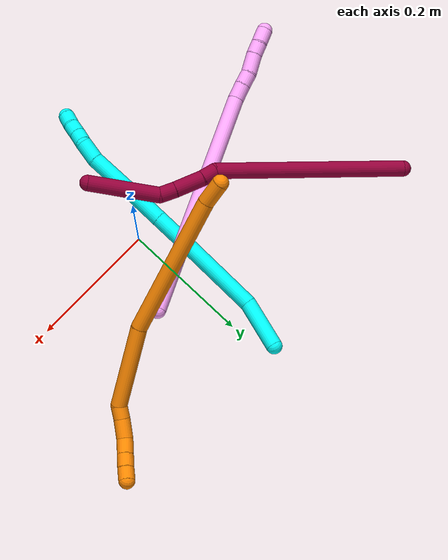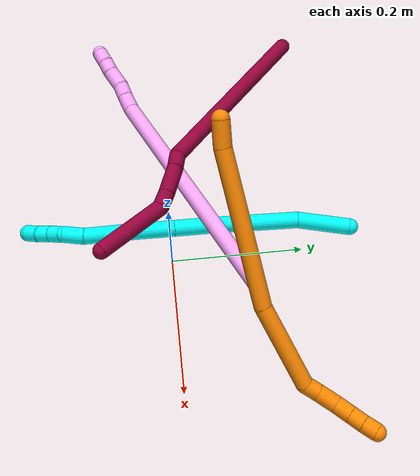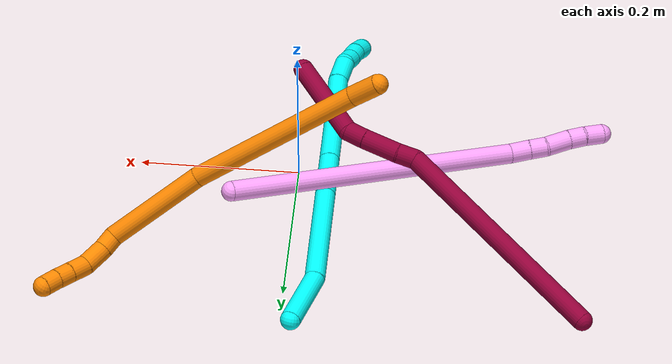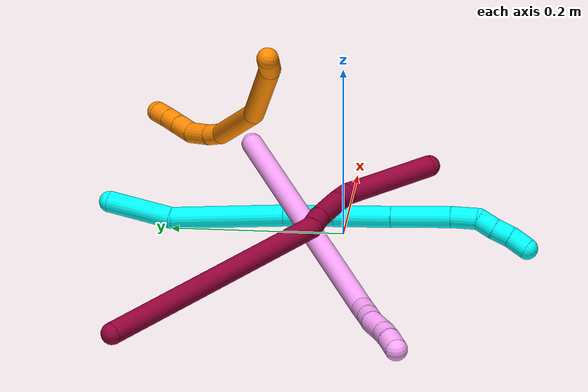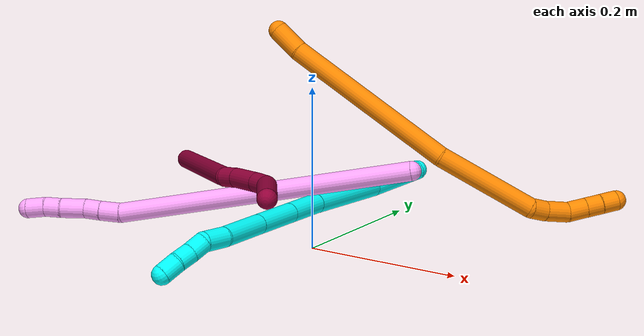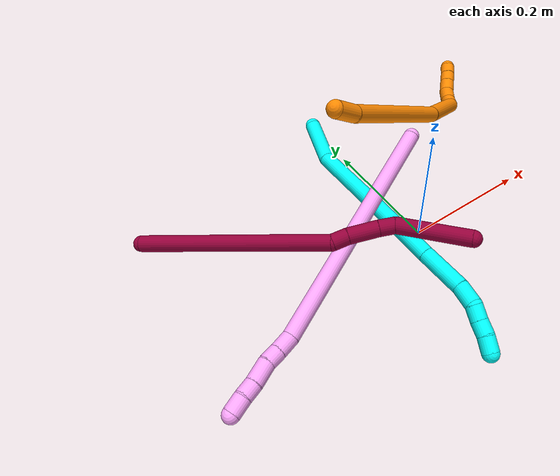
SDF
<sdf version="1.7">
 <world name="default">
  <model name="3">
   <static>0</static>
   <link name="3">
    <collision name="collision-cylinder-e_1_1_4">
     <pose>-0.000351 -0.034444 0.018563 1.0765 -0.008983 -0.005363</pose>
     <geometry><cylinder><radius>0.0125</radius><length>0.078259</length></cylinder></geometry>
     <surface>
      <friction><ode><mu>1.16</mu><mu2>1.16</mu2><slip1>0</slip1><slip2>0</slip2></ode></friction>
      <contact><ode><kp>1e+06</kp><kd>1</kd><max_vel>0</max_vel><min_depth>0.001</min_depth></ode></contact>
     </surface>
    </collision>
    <visual name="visual-cylinder-e_1_1_4">
     <pose>-0.000351 -0.034444 0.018563 1.0765 -0.008983 -0.005363</pose>
     <geometry><cylinder><radius>0.0125</radius><length>0.078259</length></cylinder></geometry>
     <material><ambient>0.003922 1 0.996078 1</ambient></material>
    </visual>
    <collision name="collision-cylinder-e_2_4_5">
     <pose>0.016247 -0.117613 0.077042 0.884425 0.26288 0.125029</pose>
     <geometry><cylinder><radius>0.0125</radius><length>0.130456</length></cylinder></geometry>
     <surface>
      <friction><ode><mu>1.16</mu><mu2>1.16</mu2><slip1>0</slip1><slip2>0</slip2></ode></friction>
      <contact><ode><kp>1e+06</kp><kd>1</kd><max_vel>0</max_vel><min_depth>0.001</min_depth></ode></contact>
     </surface>
    </collision>
    <visual name="visual-cylinder-e_2_4_5">
     <pose>0.016247 -0.117613 0.077042 0.884425 0.26288 0.125029</pose>
     <geometry><cylinder><radius>0.0125</radius><length>0.130456</length></cylinder></geometry>
     <material><ambient>0.003922 1 0.996078 1</ambient></material>
    </visual>
    <collision name="collision-cylinder-e_3_5_6">
     <pose>0.040949 -0.188507 0.133796 0.921304 0.271547 0.135385</pose>
     <geometry><cylinder><radius>0.0125</radius><length>0.057796</length></cylinder></geometry>
     <surface>
      <friction><ode><mu>1.16</mu><mu2>1.16</mu2><slip1>0</slip1><slip2>0</slip2></ode></friction>
      <contact><ode><kp>1e+06</kp><kd>1</kd><max_vel>0</max_vel><min_depth>0.001</min_depth></ode></contact>
     </surface>
    </collision>
    <visual name="visual-cylinder-e_3_5_6">
     <pose>0.040949 -0.188507 0.133796 0.921304 0.271547 0.135385</pose>
     <geometry><cylinder><radius>0.0125</radius><length>0.057796</length></cylinder></geometry>
     <material><ambient>0.003922 1 0.996078 1</ambient></material>
    </visual>
    <collision name="collision-cylinder-e_4_6_7">
     <pose>0.057413 -0.235989 0.169707 0.924993 0.268297 0.134368</pose>
     <geometry><cylinder><radius>0.0125</radius><length>0.06574</length></cylinder></geometry>
     <surface>
      <friction><ode><mu>1.16</mu><mu2>1.16</mu2><slip1>0</slip1><slip2>0</slip2></ode></friction>
      <contact><ode><kp>1e+06</kp><kd>1</kd><max_vel>0</max_vel><min_depth>0.001</min_depth></ode></contact>
     </surface>
    </collision>
    <visual name="visual-cylinder-e_4_6_7">
     <pose>0.057413 -0.235989 0.169707 0.924993 0.268297 0.134368</pose>
     <geometry><cylinder><radius>0.0125</radius><length>0.06574</length></cylinder></geometry>
     <material><ambient>0.003922 1 0.996078 1</ambient></material>
    </visual>
    <collision name="collision-cylinder-e_5_7_8">
     <pose>0.075996 -0.287848 0.209049 0.918751 0.287319 0.142871</pose>
     <geometry><cylinder><radius>0.0125</radius><length>0.069654</length></cylinder></geometry>
     <surface>
      <friction><ode><mu>1.16</mu><mu2>1.16</mu2><slip1>0</slip1><slip2>0</slip2></ode></friction>
      <contact><ode><kp>1e+06</kp><kd>1</kd><max_vel>0</max_vel><min_depth>0.001</min_depth></ode></contact>
     </surface>
    </collision>
    <visual name="visual-cylinder-e_5_7_8">
     <pose>0.075996 -0.287848 0.209049 0.918751 0.287319 0.142871</pose>
     <geometry><cylinder><radius>0.0125</radius><length>0.069654</length></cylinder></geometry>
     <material><ambient>0.003922 1 0.996078 1</ambient></material>
    </visual>
    <collision name="collision-cylinder-e_6_8_9">
     <pose>0.087256 -0.327242 0.239061 0.921843 0.086026 0.04274</pose>
     <geometry><cylinder><radius>0.0125</radius><length>0.032368</length></cylinder></geometry>
     <surface>
      <friction><ode><mu>1.16</mu><mu2>1.16</mu2><slip1>0</slip1><slip2>0</slip2></ode></friction>
      <contact><ode><kp>1e+06</kp><kd>1</kd><max_vel>0</max_vel><min_depth>0.001</min_depth></ode></contact>
     </surface>
    </collision>
    <visual name="visual-cylinder-e_6_8_9">
     <pose>0.087256 -0.327242 0.239061 0.921843 0.086026 0.04274</pose>
     <geometry><cylinder><radius>0.0125</radius><length>0.032368</length></cylinder></geometry>
     <material><ambient>0.003922 1 0.996078 1</ambient></material>
    </visual>
    <collision name="collision-cylinder-e_7_9_10">
     <pose>0.088554 -0.350749 0.250482 1.41484 -0.008558 -0.007318</pose>
     <geometry><cylinder><radius>0.0125</radius><length>0.021584</length></cylinder></geometry>
     <surface>
      <friction><ode><mu>1.16</mu><mu2>1.16</mu2><slip1>0</slip1><slip2>0</slip2></ode></friction>
      <contact><ode><kp>1e+06</kp><kd>1</kd><max_vel>0</max_vel><min_depth>0.001</min_depth></ode></contact>
     </surface>
    </collision>
    <visual name="visual-cylinder-e_7_9_10">
     <pose>0.088554 -0.350749 0.250482 1.41484 -0.008558 -0.007318</pose>
     <geometry><cylinder><radius>0.0125</radius><length>0.021584</length></cylinder></geometry>
     <material><ambient>0.003922 1 0.996078 1</ambient></material>
    </visual>
    <collision name="collision-cylinder-e_8_10_11">
     <pose>0.088896 -0.371485 0.254842 1.31049 0.041644 0.032006</pose>
     <geometry><cylinder><radius>0.0125</radius><length>0.020872</length></cylinder></geometry>
     <surface>
      <friction><ode><mu>1.16</mu><mu2>1.16</mu2><slip1>0</slip1><slip2>0</slip2></ode></friction>
      <contact><ode><kp>1e+06</kp><kd>1</kd><max_vel>0</max_vel><min_depth>0.001</min_depth></ode></contact>
     </surface>
    </collision>
    <visual name="visual-cylinder-e_8_10_11">
     <pose>0.088896 -0.371485 0.254842 1.31049 0.041644 0.032006</pose>
     <geometry><cylinder><radius>0.0125</radius><length>0.020872</length></cylinder></geometry>
     <material><ambient>0.003922 1 0.996078 1</ambient></material>
    </visual>
    <collision name="collision-cylinder-e_9_11_2">
     <pose>0.088657 -0.393095 0.258895 1.45261 -0.057933 -0.051464</pose>
     <geometry><cylinder><radius>0.0125</radius><length>0.023271</length></cylinder></geometry>
     <surface>
      <friction><ode><mu>1.16</mu><mu2>1.16</mu2><slip1>0</slip1><slip2>0</slip2></ode></friction>
      <contact><ode><kp>1e+06</kp><kd>1</kd><max_vel>0</max_vel><min_depth>0.001</min_depth></ode></contact>
     </surface>
    </collision>
    <visual name="visual-cylinder-e_9_11_2">
     <pose>0.088657 -0.393095 0.258895 1.45261 -0.057933 -0.051464</pose>
     <geometry><cylinder><radius>0.0125</radius><length>0.023271</length></cylinder></geometry>
     <material><ambient>0.003922 1 0.996078 1</ambient></material>
    </visual>
    <collision name="collision-sphere-2">
     <pose>0.087983 -0.404631 0.260265 0 -0 0</pose>
     <geometry><sphere><radius>0.0125</radius></sphere></geometry>
     <surface>
      <friction><ode><mu>1.16</mu><mu2>1.16</mu2><slip1>0</slip1><slip2>0</slip2></ode></friction>
      <contact><ode><kp>1e+06</kp><kd>1</kd><max_vel>0</max_vel><min_depth>0.001</min_depth></ode></contact>
     </surface>
    </collision>
    <visual name="visual-sphere-2">
     <pose>0.087983 -0.404631 0.260265 0 -0 0</pose>
     <geometry><sphere><radius>0.0125</radius></sphere></geometry>
     <material><ambient>0.003922 1 0.996078 1</ambient></material>
    </visual>
    <collision name="collision-sphere-11">
     <pose>0.089331 -0.38156 0.257526 0 -0 0</pose>
     <geometry><sphere><radius>0.0125</radius></sphere></geometry>
     <surface>
      <friction><ode><mu>1.16</mu><mu2>1.16</mu2><slip1>0</slip1><slip2>0</slip2></ode></friction>
      <contact><ode><kp>1e+06</kp><kd>1</kd><max_vel>0</max_vel><min_depth>0.001</min_depth></ode></contact>
     </surface>
    </collision>
    <visual name="visual-sphere-11">
     <pose>0.089331 -0.38156 0.257526 0 -0 0</pose>
     <geometry><sphere><radius>0.0125</radius></sphere></geometry>
     <material><ambient>0.003922 1 0.996078 1</ambient></material>
    </visual>
    <collision name="collision-sphere-10">
     <pose>0.088462 -0.361409 0.252158 0 -0 0</pose>
     <geometry><sphere><radius>0.0125</radius></sphere></geometry>
     <surface>
      <friction><ode><mu>1.16</mu><mu2>1.16</mu2><slip1>0</slip1><slip2>0</slip2></ode></friction>
      <contact><ode><kp>1e+06</kp><kd>1</kd><max_vel>0</max_vel><min_depth>0.001</min_depth></ode></contact>
     </surface>
    </collision>
    <visual name="visual-sphere-10">
     <pose>0.088462 -0.361409 0.252158 0 -0 0</pose>
     <geometry><sphere><radius>0.0125</radius></sphere></geometry>
     <material><ambient>0.003922 1 0.996078 1</ambient></material>
    </visual>
    <collision name="collision-sphere-9">
     <pose>0.088647 -0.340088 0.248806 0 -0 0</pose>
     <geometry><sphere><radius>0.0125</radius></sphere></geometry>
     <surface>
      <friction><ode><mu>1.16</mu><mu2>1.16</mu2><slip1>0</slip1><slip2>0</slip2></ode></friction>
      <contact><ode><kp>1e+06</kp><kd>1</kd><max_vel>0</max_vel><min_depth>0.001</min_depth></ode></contact>
     </surface>
    </collision>
    <visual name="visual-sphere-9">
     <pose>0.088647 -0.340088 0.248806 0 -0 0</pose>
     <geometry><sphere><radius>0.0125</radius></sphere></geometry>
     <material><ambient>0.003922 1 0.996078 1</ambient></material>
    </visual>
    <collision name="collision-sphere-4">
     <pose>-0.000703 -0.068889 0.037125 0 -0 0</pose>
     <geometry><sphere><radius>0.0125</radius></sphere></geometry>
     <surface>
      <friction><ode><mu>1.16</mu><mu2>1.16</mu2><slip1>0</slip1><slip2>0</slip2></ode></friction>
      <contact><ode><kp>1e+06</kp><kd>1</kd><max_vel>0</max_vel><min_depth>0.001</min_depth></ode></contact>
     </surface>
    </collision>
    <visual name="visual-sphere-4">
     <pose>-0.000703 -0.068889 0.037125 0 -0 0</pose>
     <geometry><sphere><radius>0.0125</radius></sphere></geometry>
     <material><ambient>0.003922 1 0.996078 1</ambient></material>
    </visual>
    <collision name="collision-sphere-1">
     <geometry><sphere><radius>0.0125</radius></sphere></geometry>
     <surface>
      <friction><ode><mu>1.16</mu><mu2>1.16</mu2><slip1>0</slip1><slip2>0</slip2></ode></friction>
      <contact><ode><kp>1e+06</kp><kd>1</kd><max_vel>0</max_vel><min_depth>0.001</min_depth></ode></contact>
     </surface>
    </collision>
    <visual name="visual-sphere-1">
     <geometry><sphere><radius>0.0125</radius></sphere></geometry>
     <material><ambient>0.003922 1 0.996078 1</ambient></material>
    </visual>
    <collision name="collision-sphere-8">
     <pose>0.085866 -0.314396 0.229317 0 -0 0</pose>
     <geometry><sphere><radius>0.0125</radius></sphere></geometry>
     <surface>
      <friction><ode><mu>1.16</mu><mu2>1.16</mu2><slip1>0</slip1><slip2>0</slip2></ode></friction>
      <contact><ode><kp>1e+06</kp><kd>1</kd><max_vel>0</max_vel><min_depth>0.001</min_depth></ode></contact>
     </surface>
    </collision>
    <visual name="visual-sphere-8">
     <pose>0.085866 -0.314396 0.229317 0 -0 0</pose>
     <geometry><sphere><radius>0.0125</radius></sphere></geometry>
     <material><ambient>0.003922 1 0.996078 1</ambient></material>
    </visual>
    <collision name="collision-sphere-5">
     <pose>0.033198 -0.166336 0.11696 0 -0 0</pose>
     <geometry><sphere><radius>0.0125</radius></sphere></geometry>
     <surface>
      <friction><ode><mu>1.16</mu><mu2>1.16</mu2><slip1>0</slip1><slip2>0</slip2></ode></friction>
      <contact><ode><kp>1e+06</kp><kd>1</kd><max_vel>0</max_vel><min_depth>0.001</min_depth></ode></contact>
     </surface>
    </collision>
    <visual name="visual-sphere-5">
     <pose>0.033198 -0.166336 0.11696 0 -0 0</pose>
     <geometry><sphere><radius>0.0125</radius></sphere></geometry>
     <material><ambient>0.003922 1 0.996078 1</ambient></material>
    </visual>
    <collision name="collision-sphere-6">
     <pose>0.0487 -0.210678 0.150633 0 -0 0</pose>
     <geometry><sphere><radius>0.0125</radius></sphere></geometry>
     <surface>
      <friction><ode><mu>1.16</mu><mu2>1.16</mu2><slip1>0</slip1><slip2>0</slip2></ode></friction>
      <contact><ode><kp>1e+06</kp><kd>1</kd><max_vel>0</max_vel><min_depth>0.001</min_depth></ode></contact>
     </surface>
    </collision>
    <visual name="visual-sphere-6">
     <pose>0.0487 -0.210678 0.150633 0 -0 0</pose>
     <geometry><sphere><radius>0.0125</radius></sphere></geometry>
     <material><ambient>0.003922 1 0.996078 1</ambient></material>
    </visual>
    <collision name="collision-sphere-7">
     <pose>0.066127 -0.261301 0.188782 0 -0 0</pose>
     <geometry><sphere><radius>0.0125</radius></sphere></geometry>
     <surface>
      <friction><ode><mu>1.16</mu><mu2>1.16</mu2><slip1>0</slip1><slip2>0</slip2></ode></friction>
      <contact><ode><kp>1e+06</kp><kd>1</kd><max_vel>0</max_vel><min_depth>0.001</min_depth></ode></contact>
     </surface>
    </collision>
    <visual name="visual-sphere-7">
     <pose>0.066127 -0.261301 0.188782 0 -0 0</pose>
     <geometry><sphere><radius>0.0125</radius></sphere></geometry>
     <material><ambient>0.003922 1 0.996078 1</ambient></material>
    </visual>
    <inertial>
     <pose>0.044362 -0.199123 0.138884 0 -0 0</pose>
     <mass>0.5</mass>
     <inertia>
      <ixx>0.000346</ixx>
      <ixy>0</ixy>
      <ixz>0</ixz>
      <iyy>0.000197</iyy>
      <iyz>0</iyz>
      <izz>0.000196</izz>
     </inertia>
    </inertial>
   </link>
   <pose>-0.016737 0.270159 0.036966 0.616482 0.031678 -0.271851</pose>
  </model>
  <model name="4">
   <static>0</static>
   <link name="4">
    <collision name="collision-cylinder-e_1_1_4">
     <pose>-0.155553 -0.105173 -0.004821 1.6166 -0.975791 -1.01422</pose>
     <geometry><cylinder><radius>0.0125</radius><length>0.375667</length></cylinder></geometry>
     <surface>
      <friction><ode><mu>1.16</mu><mu2>1.16</mu2><slip1>0</slip1><slip2>0</slip2></ode></friction>
      <contact><ode><kp>1e+06</kp><kd>1</kd><max_vel>0</max_vel><min_depth>0.001</min_depth></ode></contact>
     </surface>
    </collision>
    <visual name="visual-cylinder-e_1_1_4">
     <pose>-0.155553 -0.105173 -0.004821 1.6166 -0.975791 -1.01422</pose>
     <geometry><cylinder><radius>0.0125</radius><length>0.375667</length></cylinder></geometry>
     <material><ambient>1 0.65098 0.996078 1</ambient></material>
    </visual>
    <collision name="collision-cylinder-e_2_4_5">
     <pose>-0.322325 -0.216629 -0.006997 1.1725 -1.02473 -0.715012</pose>
     <geometry><cylinder><radius>0.0125</radius><length>0.026255</length></cylinder></geometry>
     <surface>
      <friction><ode><mu>1.16</mu><mu2>1.16</mu2><slip1>0</slip1><slip2>0</slip2></ode></friction>
      <contact><ode><kp>1e+06</kp><kd>1</kd><max_vel>0</max_vel><min_depth>0.001</min_depth></ode></contact>
     </surface>
    </collision>
    <visual name="visual-cylinder-e_2_4_5">
     <pose>-0.322325 -0.216629 -0.006997 1.1725 -1.02473 -0.715012</pose>
     <geometry><cylinder><radius>0.0125</radius><length>0.026255</length></cylinder></geometry>
     <material><ambient>1 0.65098 0.996078 1</ambient></material>
    </visual>
    <collision name="collision-cylinder-e_3_5_6">
     <pose>-0.342813 -0.227583 -0.001947 1.09504 -1.05521 -0.682732</pose>
     <geometry><cylinder><radius>0.0125</radius><length>0.021309</length></cylinder></geometry>
     <surface>
      <friction><ode><mu>1.16</mu><mu2>1.16</mu2><slip1>0</slip1><slip2>0</slip2></ode></friction>
      <contact><ode><kp>1e+06</kp><kd>1</kd><max_vel>0</max_vel><min_depth>0.001</min_depth></ode></contact>
     </surface>
    </collision>
    <visual name="visual-cylinder-e_3_5_6">
     <pose>-0.342813 -0.227583 -0.001947 1.09504 -1.05521 -0.682732</pose>
     <geometry><cylinder><radius>0.0125</radius><length>0.021309</length></cylinder></geometry>
     <material><ambient>1 0.65098 0.996078 1</ambient></material>
    </visual>
    <collision name="collision-cylinder-e_4_6_7">
     <pose>-0.364407 -0.242014 0.002811 1.33436 -0.887146 -0.716253</pose>
     <geometry><cylinder><radius>0.0125</radius><length>0.031793</length></cylinder></geometry>
     <surface>
      <friction><ode><mu>1.16</mu><mu2>1.16</mu2><slip1>0</slip1><slip2>0</slip2></ode></friction>
      <contact><ode><kp>1e+06</kp><kd>1</kd><max_vel>0</max_vel><min_depth>0.001</min_depth></ode></contact>
     </surface>
    </collision>
    <visual name="visual-cylinder-e_4_6_7">
     <pose>-0.364407 -0.242014 0.002811 1.33436 -0.887146 -0.716253</pose>
     <geometry><cylinder><radius>0.0125</radius><length>0.031793</length></cylinder></geometry>
     <material><ambient>1 0.65098 0.996078 1</ambient></material>
    </visual>
    <collision name="collision-cylinder-e_5_7_8">
     <pose>-0.385465 -0.25706 0.007032 1.2308 -1.00018 -0.737303</pose>
     <geometry><cylinder><radius>0.0125</radius><length>0.020757</length></cylinder></geometry>
     <surface>
      <friction><ode><mu>1.16</mu><mu2>1.16</mu2><slip1>0</slip1><slip2>0</slip2></ode></friction>
      <contact><ode><kp>1e+06</kp><kd>1</kd><max_vel>0</max_vel><min_depth>0.001</min_depth></ode></contact>
     </surface>
    </collision>
    <visual name="visual-cylinder-e_5_7_8">
     <pose>-0.385465 -0.25706 0.007032 1.2308 -1.00018 -0.737303</pose>
     <geometry><cylinder><radius>0.0125</radius><length>0.020757</length></cylinder></geometry>
     <material><ambient>1 0.65098 0.996078 1</ambient></material>
    </visual>
    <collision name="collision-cylinder-e_6_8_2">
     <pose>-0.404485 -0.268728 0.009226 1.51998 -1.0148 -0.9722</pose>
     <geometry><cylinder><radius>0.0125</radius><length>0.024219</length></cylinder></geometry>
     <surface>
      <friction><ode><mu>1.16</mu><mu2>1.16</mu2><slip1>0</slip1><slip2>0</slip2></ode></friction>
      <contact><ode><kp>1e+06</kp><kd>1</kd><max_vel>0</max_vel><min_depth>0.001</min_depth></ode></contact>
     </surface>
    </collision>
    <visual name="visual-cylinder-e_6_8_2">
     <pose>-0.404485 -0.268728 0.009226 1.51998 -1.0148 -0.9722</pose>
     <geometry><cylinder><radius>0.0125</radius><length>0.024219</length></cylinder></geometry>
     <material><ambient>1 0.65098 0.996078 1</ambient></material>
    </visual>
    <collision name="collision-sphere-2">
     <pose>-0.41477 -0.275111 0.009551 0 -0 0</pose>
     <geometry><sphere><radius>0.0125</radius></sphere></geometry>
     <surface>
      <friction><ode><mu>1.16</mu><mu2>1.16</mu2><slip1>0</slip1><slip2>0</slip2></ode></friction>
      <contact><ode><kp>1e+06</kp><kd>1</kd><max_vel>0</max_vel><min_depth>0.001</min_depth></ode></contact>
     </surface>
    </collision>
    <visual name="visual-sphere-2">
     <pose>-0.41477 -0.275111 0.009551 0 -0 0</pose>
     <geometry><sphere><radius>0.0125</radius></sphere></geometry>
     <material><ambient>1 0.65098 0.996078 1</ambient></material>
    </visual>
    <collision name="collision-sphere-4">
     <pose>-0.311107 -0.210345 -0.009641 0 -0 0</pose>
     <geometry><sphere><radius>0.0125</radius></sphere></geometry>
     <surface>
      <friction><ode><mu>1.16</mu><mu2>1.16</mu2><slip1>0</slip1><slip2>0</slip2></ode></friction>
      <contact><ode><kp>1e+06</kp><kd>1</kd><max_vel>0</max_vel><min_depth>0.001</min_depth></ode></contact>
     </surface>
    </collision>
    <visual name="visual-sphere-4">
     <pose>-0.311107 -0.210345 -0.009641 0 -0 0</pose>
     <geometry><sphere><radius>0.0125</radius></sphere></geometry>
     <material><ambient>1 0.65098 0.996078 1</ambient></material>
    </visual>
    <collision name="collision-sphere-1">
     <geometry><sphere><radius>0.0125</radius></sphere></geometry>
     <surface>
      <friction><ode><mu>1.16</mu><mu2>1.16</mu2><slip1>0</slip1><slip2>0</slip2></ode></friction>
      <contact><ode><kp>1e+06</kp><kd>1</kd><max_vel>0</max_vel><min_depth>0.001</min_depth></ode></contact>
     </surface>
    </collision>
    <visual name="visual-sphere-1">
     <geometry><sphere><radius>0.0125</radius></sphere></geometry>
     <material><ambient>1 0.65098 0.996078 1</ambient></material>
    </visual>
    <collision name="collision-sphere-8">
     <pose>-0.3942 -0.262345 0.008902 0 -0 0</pose>
     <geometry><sphere><radius>0.0125</radius></sphere></geometry>
     <surface>
      <friction><ode><mu>1.16</mu><mu2>1.16</mu2><slip1>0</slip1><slip2>0</slip2></ode></friction>
      <contact><ode><kp>1e+06</kp><kd>1</kd><max_vel>0</max_vel><min_depth>0.001</min_depth></ode></contact>
     </surface>
    </collision>
    <visual name="visual-sphere-8">
     <pose>-0.3942 -0.262345 0.008902 0 -0 0</pose>
     <geometry><sphere><radius>0.0125</radius></sphere></geometry>
     <material><ambient>1 0.65098 0.996078 1</ambient></material>
    </visual>
    <collision name="collision-sphere-5">
     <pose>-0.333544 -0.222913 -0.004353 0 -0 0</pose>
     <geometry><sphere><radius>0.0125</radius></sphere></geometry>
     <surface>
      <friction><ode><mu>1.16</mu><mu2>1.16</mu2><slip1>0</slip1><slip2>0</slip2></ode></friction>
      <contact><ode><kp>1e+06</kp><kd>1</kd><max_vel>0</max_vel><min_depth>0.001</min_depth></ode></contact>
     </surface>
    </collision>
    <visual name="visual-sphere-5">
     <pose>-0.333544 -0.222913 -0.004353 0 -0 0</pose>
     <geometry><sphere><radius>0.0125</radius></sphere></geometry>
     <material><ambient>1 0.65098 0.996078 1</ambient></material>
    </visual>
    <collision name="collision-sphere-6">
     <pose>-0.352083 -0.232252 0.000459 0 -0 0</pose>
     <geometry><sphere><radius>0.0125</radius></sphere></geometry>
     <surface>
      <friction><ode><mu>1.16</mu><mu2>1.16</mu2><slip1>0</slip1><slip2>0</slip2></ode></friction>
      <contact><ode><kp>1e+06</kp><kd>1</kd><max_vel>0</max_vel><min_depth>0.001</min_depth></ode></contact>
     </surface>
    </collision>
    <visual name="visual-sphere-6">
     <pose>-0.352083 -0.232252 0.000459 0 -0 0</pose>
     <geometry><sphere><radius>0.0125</radius></sphere></geometry>
     <material><ambient>1 0.65098 0.996078 1</ambient></material>
    </visual>
    <collision name="collision-sphere-7">
     <pose>-0.376731 -0.251775 0.005163 0 -0 0</pose>
     <geometry><sphere><radius>0.0125</radius></sphere></geometry>
     <surface>
      <friction><ode><mu>1.16</mu><mu2>1.16</mu2><slip1>0</slip1><slip2>0</slip2></ode></friction>
      <contact><ode><kp>1e+06</kp><kd>1</kd><max_vel>0</max_vel><min_depth>0.001</min_depth></ode></contact>
     </surface>
    </collision>
    <visual name="visual-sphere-7">
     <pose>-0.376731 -0.251775 0.005163 0 -0 0</pose>
     <geometry><sphere><radius>0.0125</radius></sphere></geometry>
     <material><ambient>1 0.65098 0.996078 1</ambient></material>
    </visual>
    <inertial>
     <pose>-0.207174 -0.139171 -0.003155 0 -0 0</pose>
     <mass>0.5</mass>
     <inertia>
      <ixx>-0.000829</ixx>
      <ixy>0</ixy>
      <ixz>0</ixz>
      <iyy>0.00088</iyy>
      <iyz>0</iyz>
      <izz>0.00617</izz>
     </inertia>
    </inertial>
   </link>
   <pose>0.070466 0.113282 0.082748 -0.018467 -0.207807 -0.165407</pose>
  </model>
  <model name="8">
   <static>0</static>
   <link name="8">
    <collision name="collision-cylinder-e_1_1_4">
     <pose>0.055899 -0.045679 -0.129007 2.80129 0.38777 1.7039</pose>
     <geometry><cylinder><radius>0.0125</radius><length>0.295662</length></cylinder></geometry>
     <surface>
      <friction><ode><mu>1.16</mu><mu2>1.16</mu2><slip1>0</slip1><slip2>0</slip2></ode></friction>
      <contact><ode><kp>1e+06</kp><kd>1</kd><max_vel>0</max_vel><min_depth>0.001</min_depth></ode></contact>
     </surface>
    </collision>
    <visual name="visual-cylinder-e_1_1_4">
     <pose>0.055899 -0.045679 -0.129007 2.80129 0.38777 1.7039</pose>
     <geometry><cylinder><radius>0.0125</radius><length>0.295662</length></cylinder></geometry>
     <material><ambient>0.584314 0 0.227451 1</ambient></material>
    </visual>
    <collision name="collision-cylinder-e_2_4_5">
     <pose>0.121019 -0.09403 -0.264956 2.77418 0.892005 2.40031</pose>
     <geometry><cylinder><radius>0.0125</radius><length>0.023696</length></cylinder></geometry>
     <surface>
      <friction><ode><mu>1.16</mu><mu2>1.16</mu2><slip1>0</slip1><slip2>0</slip2></ode></friction>
      <contact><ode><kp>1e+06</kp><kd>1</kd><max_vel>0</max_vel><min_depth>0.001</min_depth></ode></contact>
     </surface>
    </collision>
    <visual name="visual-cylinder-e_2_4_5">
     <pose>0.121019 -0.09403 -0.264956 2.77418 0.892005 2.40031</pose>
     <geometry><cylinder><radius>0.0125</radius><length>0.023696</length></cylinder></geometry>
     <material><ambient>0.584314 0 0.227451 1</ambient></material>
    </visual>
    <collision name="collision-cylinder-e_3_5_6">
     <pose>0.145969 -0.101044 -0.287815 2.87526 0.761539 2.49573</pose>
     <geometry><cylinder><radius>0.0125</radius><length>0.045588</length></cylinder></geometry>
     <surface>
      <friction><ode><mu>1.16</mu><mu2>1.16</mu2><slip1>0</slip1><slip2>0</slip2></ode></friction>
      <contact><ode><kp>1e+06</kp><kd>1</kd><max_vel>0</max_vel><min_depth>0.001</min_depth></ode></contact>
     </surface>
    </collision>
    <visual name="visual-cylinder-e_3_5_6">
     <pose>0.145969 -0.101044 -0.287815 2.87526 0.761539 2.49573</pose>
     <geometry><cylinder><radius>0.0125</radius><length>0.045588</length></cylinder></geometry>
     <material><ambient>0.584314 0 0.227451 1</ambient></material>
    </visual>
    <collision name="collision-cylinder-e_4_6_7">
     <pose>0.169603 -0.107626 -0.312921 2.90255 0.696146 2.50233</pose>
     <geometry><cylinder><radius>0.0125</radius><length>0.024655</length></cylinder></geometry>
     <surface>
      <friction><ode><mu>1.16</mu><mu2>1.16</mu2><slip1>0</slip1><slip2>0</slip2></ode></friction>
      <contact><ode><kp>1e+06</kp><kd>1</kd><max_vel>0</max_vel><min_depth>0.001</min_depth></ode></contact>
     </surface>
    </collision>
    <visual name="visual-cylinder-e_4_6_7">
     <pose>0.169603 -0.107626 -0.312921 2.90255 0.696146 2.50233</pose>
     <geometry><cylinder><radius>0.0125</radius><length>0.024655</length></cylinder></geometry>
     <material><ambient>0.584314 0 0.227451 1</ambient></material>
    </visual>
    <collision name="collision-cylinder-e_5_7_2">
     <pose>0.187899 -0.12534 -0.374068 2.85212 0.189381 1.15499</pose>
     <geometry><cylinder><radius>0.0125</radius><length>0.110399</length></cylinder></geometry>
     <surface>
      <friction><ode><mu>1.16</mu><mu2>1.16</mu2><slip1>0</slip1><slip2>0</slip2></ode></friction>
      <contact><ode><kp>1e+06</kp><kd>1</kd><max_vel>0</max_vel><min_depth>0.001</min_depth></ode></contact>
     </surface>
    </collision>
    <visual name="visual-cylinder-e_5_7_2">
     <pose>0.187899 -0.12534 -0.374068 2.85212 0.189381 1.15499</pose>
     <geometry><cylinder><radius>0.0125</radius><length>0.110399</length></cylinder></geometry>
     <material><ambient>0.584314 0 0.227451 1</ambient></material>
    </visual>
    <collision name="collision-sphere-2">
     <pose>0.198291 -0.140815 -0.426025 0 -0 0</pose>
     <geometry><sphere><radius>0.0125</radius></sphere></geometry>
     <surface>
      <friction><ode><mu>1.16</mu><mu2>1.16</mu2><slip1>0</slip1><slip2>0</slip2></ode></friction>
      <contact><ode><kp>1e+06</kp><kd>1</kd><max_vel>0</max_vel><min_depth>0.001</min_depth></ode></contact>
     </surface>
    </collision>
    <visual name="visual-sphere-2">
     <pose>0.198291 -0.140815 -0.426025 0 -0 0</pose>
     <geometry><sphere><radius>0.0125</radius></sphere></geometry>
     <material><ambient>0.584314 0 0.227451 1</ambient></material>
    </visual>
    <collision name="collision-sphere-7">
     <pose>0.177508 -0.109865 -0.322111 0 -0 0</pose>
     <geometry><sphere><radius>0.0125</radius></sphere></geometry>
     <surface>
      <friction><ode><mu>1.16</mu><mu2>1.16</mu2><slip1>0</slip1><slip2>0</slip2></ode></friction>
      <contact><ode><kp>1e+06</kp><kd>1</kd><max_vel>0</max_vel><min_depth>0.001</min_depth></ode></contact>
     </surface>
    </collision>
    <visual name="visual-sphere-7">
     <pose>0.177508 -0.109865 -0.322111 0 -0 0</pose>
     <geometry><sphere><radius>0.0125</radius></sphere></geometry>
     <material><ambient>0.584314 0 0.227451 1</ambient></material>
    </visual>
    <collision name="collision-sphere-6">
     <pose>0.161698 -0.105386 -0.303731 0 -0 0</pose>
     <geometry><sphere><radius>0.0125</radius></sphere></geometry>
     <surface>
      <friction><ode><mu>1.16</mu><mu2>1.16</mu2><slip1>0</slip1><slip2>0</slip2></ode></friction>
      <contact><ode><kp>1e+06</kp><kd>1</kd><max_vel>0</max_vel><min_depth>0.001</min_depth></ode></contact>
     </surface>
    </collision>
    <visual name="visual-sphere-6">
     <pose>0.161698 -0.105386 -0.303731 0 -0 0</pose>
     <geometry><sphere><radius>0.0125</radius></sphere></geometry>
     <material><ambient>0.584314 0 0.227451 1</ambient></material>
    </visual>
    <collision name="collision-sphere-5">
     <pose>0.130241 -0.096702 -0.271899 0 -0 0</pose>
     <geometry><sphere><radius>0.0125</radius></sphere></geometry>
     <surface>
      <friction><ode><mu>1.16</mu><mu2>1.16</mu2><slip1>0</slip1><slip2>0</slip2></ode></friction>
      <contact><ode><kp>1e+06</kp><kd>1</kd><max_vel>0</max_vel><min_depth>0.001</min_depth></ode></contact>
     </surface>
    </collision>
    <visual name="visual-sphere-5">
     <pose>0.130241 -0.096702 -0.271899 0 -0 0</pose>
     <geometry><sphere><radius>0.0125</radius></sphere></geometry>
     <material><ambient>0.584314 0 0.227451 1</ambient></material>
    </visual>
    <collision name="collision-sphere-1">
     <geometry><sphere><radius>0.0125</radius></sphere></geometry>
     <surface>
      <friction><ode><mu>1.16</mu><mu2>1.16</mu2><slip1>0</slip1><slip2>0</slip2></ode></friction>
      <contact><ode><kp>1e+06</kp><kd>1</kd><max_vel>0</max_vel><min_depth>0.001</min_depth></ode></contact>
     </surface>
    </collision>
    <visual name="visual-sphere-1">
     <geometry><sphere><radius>0.0125</radius></sphere></geometry>
     <material><ambient>0.584314 0 0.227451 1</ambient></material>
    </visual>
    <collision name="collision-sphere-4">
     <pose>0.111797 -0.091358 -0.258014 0 -0 0</pose>
     <geometry><sphere><radius>0.0125</radius></sphere></geometry>
     <surface>
      <friction><ode><mu>1.16</mu><mu2>1.16</mu2><slip1>0</slip1><slip2>0</slip2></ode></friction>
      <contact><ode><kp>1e+06</kp><kd>1</kd><max_vel>0</max_vel><min_depth>0.001</min_depth></ode></contact>
     </surface>
    </collision>
    <visual name="visual-sphere-4">
     <pose>0.111797 -0.091358 -0.258014 0 -0 0</pose>
     <geometry><sphere><radius>0.0125</radius></sphere></geometry>
     <material><ambient>0.584314 0 0.227451 1</ambient></material>
    </visual>
    <inertial>
     <pose>0.101949 -0.073662 -0.213107 0 -0 0</pose>
     <mass>0.5</mass>
     <inertia>
      <ixx>0.001885</ixx>
      <ixy>0</ixy>
      <ixz>0</ixz>
      <iyy>0.002601</iyy>
      <iyz>0</iyz>
      <izz>-0.000179</izz>
     </inertia>
    </inertial>
   </link>
   <pose>-0.361946 0.220104 0.01209 -1.4068 -0.022413 0.435105</pose>
  </model>
  <model name="19">
   <static>0</static>
   <link name="19">
    <collision name="collision-cylinder-e_1_1_4">
     <pose>0.007883 -0.003612 -0.016559 2.92681 0.435351 2.23456</pose>
     <geometry><cylinder><radius>0.0125</radius><length>0.037384</length></cylinder></geometry>
     <surface>
      <friction><ode><mu>1.16</mu><mu2>1.16</mu2><slip1>0</slip1><slip2>0</slip2></ode></friction>
      <contact><ode><kp>1e+06</kp><kd>1</kd><max_vel>0</max_vel><min_depth>0.001</min_depth></ode></contact>
     </surface>
    </collision>
    <visual name="visual-cylinder-e_1_1_4">
     <pose>0.007883 -0.003612 -0.016559 2.92681 0.435351 2.23456</pose>
     <geometry><cylinder><radius>0.0125</radius><length>0.037384</length></cylinder></geometry>
     <material><ambient>0.996078 0.537255 0 1</ambient></material>
    </visual>
    <collision name="collision-cylinder-e_2_4_5">
     <pose>0.068115 -0.009775 -0.130566 3.11543 0.492816 3.03765</pose>
     <geometry><cylinder><radius>0.0125</radius><length>0.221296</length></cylinder></geometry>
     <surface>
      <friction><ode><mu>1.16</mu><mu2>1.16</mu2><slip1>0</slip1><slip2>0</slip2></ode></friction>
      <contact><ode><kp>1e+06</kp><kd>1</kd><max_vel>0</max_vel><min_depth>0.001</min_depth></ode></contact>
     </surface>
    </collision>
    <visual name="visual-cylinder-e_2_4_5">
     <pose>0.068115 -0.009775 -0.130566 3.11543 0.492816 3.03765</pose>
     <geometry><cylinder><radius>0.0125</radius><length>0.221296</length></cylinder></geometry>
     <material><ambient>0.996078 0.537255 0 1</ambient></material>
    </visual>
    <collision name="collision-cylinder-e_3_5_6">
     <pose>0.148336 0.000878 -0.282993 -2.9059 0.457996 -2.20163</pose>
     <geometry><cylinder><radius>0.0125</radius><length>0.126077</length></cylinder></geometry>
     <surface>
      <friction><ode><mu>1.16</mu><mu2>1.16</mu2><slip1>0</slip1><slip2>0</slip2></ode></friction>
      <contact><ode><kp>1e+06</kp><kd>1</kd><max_vel>0</max_vel><min_depth>0.001</min_depth></ode></contact>
     </surface>
    </collision>
    <visual name="visual-cylinder-e_3_5_6">
     <pose>0.148336 0.000878 -0.282993 -2.9059 0.457996 -2.20163</pose>
     <geometry><cylinder><radius>0.0125</radius><length>0.126077</length></cylinder></geometry>
     <material><ambient>0.996078 0.537255 0 1</ambient></material>
    </visual>
    <collision name="collision-cylinder-e_4_6_7">
     <pose>0.179331 0.02086 -0.344962 -2.37162 0.310352 -0.736858</pose>
     <geometry><cylinder><radius>0.0125</radius><length>0.020451</length></cylinder></geometry>
     <surface>
      <friction><ode><mu>1.16</mu><mu2>1.16</mu2><slip1>0</slip1><slip2>0</slip2></ode></friction>
      <contact><ode><kp>1e+06</kp><kd>1</kd><max_vel>0</max_vel><min_depth>0.001</min_depth></ode></contact>
     </surface>
    </collision>
    <visual name="visual-cylinder-e_4_6_7">
     <pose>0.179331 0.02086 -0.344962 -2.37162 0.310352 -0.736858</pose>
     <geometry><cylinder><radius>0.0125</radius><length>0.020451</length></cylinder></geometry>
     <material><ambient>0.996078 0.537255 0 1</ambient></material>
    </visual>
    <collision name="collision-cylinder-e_5_7_8">
     <pose>0.189073 0.037978 -0.360994 -2.2893 0.449032 -0.932169</pose>
     <geometry><cylinder><radius>0.0125</radius><length>0.030496</length></cylinder></geometry>
     <surface>
      <friction><ode><mu>1.16</mu><mu2>1.16</mu2><slip1>0</slip1><slip2>0</slip2></ode></friction>
      <contact><ode><kp>1e+06</kp><kd>1</kd><max_vel>0</max_vel><min_depth>0.001</min_depth></ode></contact>
     </surface>
    </collision>
    <visual name="visual-cylinder-e_5_7_8">
     <pose>0.189073 0.037978 -0.360994 -2.2893 0.449032 -0.932169</pose>
     <geometry><cylinder><radius>0.0125</radius><length>0.030496</length></cylinder></geometry>
     <material><ambient>0.996078 0.537255 0 1</ambient></material>
    </visual>
    <collision name="collision-cylinder-e_6_8_9">
     <pose>0.203578 0.056532 -0.374152 -2.03533 0.709375 -1.0806</pose>
     <geometry><cylinder><radius>0.0125</radius><length>0.024214</length></cylinder></geometry>
     <surface>
      <friction><ode><mu>1.16</mu><mu2>1.16</mu2><slip1>0</slip1><slip2>0</slip2></ode></friction>
      <contact><ode><kp>1e+06</kp><kd>1</kd><max_vel>0</max_vel><min_depth>0.001</min_depth></ode></contact>
     </surface>
    </collision>
    <visual name="visual-cylinder-e_6_8_9">
     <pose>0.203578 0.056532 -0.374152 -2.03533 0.709375 -1.0806</pose>
     <geometry><cylinder><radius>0.0125</radius><length>0.024214</length></cylinder></geometry>
     <material><ambient>0.996078 0.537255 0 1</ambient></material>
    </visual>
    <collision name="collision-cylinder-e_7_9_10">
     <pose>0.218019 0.071505 -0.381714 -2.04222 0.712565 -1.09175</pose>
     <geometry><cylinder><radius>0.0125</radius><length>0.020055</length></cylinder></geometry>
     <surface>
      <friction><ode><mu>1.16</mu><mu2>1.16</mu2><slip1>0</slip1><slip2>0</slip2></ode></friction>
      <contact><ode><kp>1e+06</kp><kd>1</kd><max_vel>0</max_vel><min_depth>0.001</min_depth></ode></contact>
     </surface>
    </collision>
    <visual name="visual-cylinder-e_7_9_10">
     <pose>0.218019 0.071505 -0.381714 -2.04222 0.712565 -1.09175</pose>
     <geometry><cylinder><radius>0.0125</radius><length>0.020055</length></cylinder></geometry>
     <material><ambient>0.996078 0.537255 0 1</ambient></material>
    </visual>
    <collision name="collision-cylinder-e_8_10_2">
     <pose>0.230716 0.08539 -0.388594 -2.02001 0.660106 -0.998716</pose>
     <geometry><cylinder><radius>0.0125</radius><length>0.020027</length></cylinder></geometry>
     <surface>
      <friction><ode><mu>1.16</mu><mu2>1.16</mu2><slip1>0</slip1><slip2>0</slip2></ode></friction>
      <contact><ode><kp>1e+06</kp><kd>1</kd><max_vel>0</max_vel><min_depth>0.001</min_depth></ode></contact>
     </surface>
    </collision>
    <visual name="visual-cylinder-e_8_10_2">
     <pose>0.230716 0.08539 -0.388594 -2.02001 0.660106 -0.998716</pose>
     <geometry><cylinder><radius>0.0125</radius><length>0.020027</length></cylinder></geometry>
     <material><ambient>0.996078 0.537255 0 1</ambient></material>
    </visual>
    <collision name="collision-sphere-2">
     <pose>0.236856 0.092515 -0.392029 0 -0 0</pose>
     <geometry><sphere><radius>0.0125</radius></sphere></geometry>
     <surface>
      <friction><ode><mu>1.16</mu><mu2>1.16</mu2><slip1>0</slip1><slip2>0</slip2></ode></friction>
      <contact><ode><kp>1e+06</kp><kd>1</kd><max_vel>0</max_vel><min_depth>0.001</min_depth></ode></contact>
     </surface>
    </collision>
    <visual name="visual-sphere-2">
     <pose>0.236856 0.092515 -0.392029 0 -0 0</pose>
     <geometry><sphere><radius>0.0125</radius></sphere></geometry>
     <material><ambient>0.996078 0.537255 0 1</ambient></material>
    </visual>
    <collision name="collision-sphere-10">
     <pose>0.224575 0.078264 -0.385159 0 -0 0</pose>
     <geometry><sphere><radius>0.0125</radius></sphere></geometry>
     <surface>
      <friction><ode><mu>1.16</mu><mu2>1.16</mu2><slip1>0</slip1><slip2>0</slip2></ode></friction>
      <contact><ode><kp>1e+06</kp><kd>1</kd><max_vel>0</max_vel><min_depth>0.001</min_depth></ode></contact>
     </surface>
    </collision>
    <visual name="visual-sphere-10">
     <pose>0.224575 0.078264 -0.385159 0 -0 0</pose>
     <geometry><sphere><radius>0.0125</radius></sphere></geometry>
     <material><ambient>0.996078 0.537255 0 1</ambient></material>
    </visual>
    <collision name="collision-sphere-9">
     <pose>0.211464 0.064745 -0.378268 0 -0 0</pose>
     <geometry><sphere><radius>0.0125</radius></sphere></geometry>
     <surface>
      <friction><ode><mu>1.16</mu><mu2>1.16</mu2><slip1>0</slip1><slip2>0</slip2></ode></friction>
      <contact><ode><kp>1e+06</kp><kd>1</kd><max_vel>0</max_vel><min_depth>0.001</min_depth></ode></contact>
     </surface>
    </collision>
    <visual name="visual-sphere-9">
     <pose>0.211464 0.064745 -0.378268 0 -0 0</pose>
     <geometry><sphere><radius>0.0125</radius></sphere></geometry>
     <material><ambient>0.996078 0.537255 0 1</ambient></material>
    </visual>
    <collision name="collision-sphere-4">
     <pose>0.015766 -0.007224 -0.033118 0 -0 0</pose>
     <geometry><sphere><radius>0.0125</radius></sphere></geometry>
     <surface>
      <friction><ode><mu>1.16</mu><mu2>1.16</mu2><slip1>0</slip1><slip2>0</slip2></ode></friction>
      <contact><ode><kp>1e+06</kp><kd>1</kd><max_vel>0</max_vel><min_depth>0.001</min_depth></ode></contact>
     </surface>
    </collision>
    <visual name="visual-sphere-4">
     <pose>0.015766 -0.007224 -0.033118 0 -0 0</pose>
     <geometry><sphere><radius>0.0125</radius></sphere></geometry>
     <material><ambient>0.996078 0.537255 0 1</ambient></material>
    </visual>
    <collision name="collision-sphere-1">
     <geometry><sphere><radius>0.0125</radius></sphere></geometry>
     <surface>
      <friction><ode><mu>1.16</mu><mu2>1.16</mu2><slip1>0</slip1><slip2>0</slip2></ode></friction>
      <contact><ode><kp>1e+06</kp><kd>1</kd><max_vel>0</max_vel><min_depth>0.001</min_depth></ode></contact>
     </surface>
    </collision>
    <visual name="visual-sphere-1">
     <geometry><sphere><radius>0.0125</radius></sphere></geometry>
     <material><ambient>0.996078 0.537255 0 1</ambient></material>
    </visual>
    <collision name="collision-sphere-8">
     <pose>0.195692 0.048319 -0.370036 0 -0 0</pose>
     <geometry><sphere><radius>0.0125</radius></sphere></geometry>
     <surface>
      <friction><ode><mu>1.16</mu><mu2>1.16</mu2><slip1>0</slip1><slip2>0</slip2></ode></friction>
      <contact><ode><kp>1e+06</kp><kd>1</kd><max_vel>0</max_vel><min_depth>0.001</min_depth></ode></contact>
     </surface>
    </collision>
    <visual name="visual-sphere-8">
     <pose>0.195692 0.048319 -0.370036 0 -0 0</pose>
     <geometry><sphere><radius>0.0125</radius></sphere></geometry>
     <material><ambient>0.996078 0.537255 0 1</ambient></material>
    </visual>
    <collision name="collision-sphere-5">
     <pose>0.120463 -0.012325 -0.228014 0 -0 0</pose>
     <geometry><sphere><radius>0.0125</radius></sphere></geometry>
     <surface>
      <friction><ode><mu>1.16</mu><mu2>1.16</mu2><slip1>0</slip1><slip2>0</slip2></ode></friction>
      <contact><ode><kp>1e+06</kp><kd>1</kd><max_vel>0</max_vel><min_depth>0.001</min_depth></ode></contact>
     </surface>
    </collision>
    <visual name="visual-sphere-5">
     <pose>0.120463 -0.012325 -0.228014 0 -0 0</pose>
     <geometry><sphere><radius>0.0125</radius></sphere></geometry>
     <material><ambient>0.996078 0.537255 0 1</ambient></material>
    </visual>
    <collision name="collision-sphere-6">
     <pose>0.176208 0.014082 -0.337971 0 -0 0</pose>
     <geometry><sphere><radius>0.0125</radius></sphere></geometry>
     <surface>
      <friction><ode><mu>1.16</mu><mu2>1.16</mu2><slip1>0</slip1><slip2>0</slip2></ode></friction>
      <contact><ode><kp>1e+06</kp><kd>1</kd><max_vel>0</max_vel><min_depth>0.001</min_depth></ode></contact>
     </surface>
    </collision>
    <visual name="visual-sphere-6">
     <pose>0.176208 0.014082 -0.337971 0 -0 0</pose>
     <geometry><sphere><radius>0.0125</radius></sphere></geometry>
     <material><ambient>0.996078 0.537255 0 1</ambient></material>
    </visual>
    <collision name="collision-sphere-7">
     <pose>0.182454 0.027638 -0.351952 0 -0 0</pose>
     <geometry><sphere><radius>0.0125</radius></sphere></geometry>
     <surface>
      <friction><ode><mu>1.16</mu><mu2>1.16</mu2><slip1>0</slip1><slip2>0</slip2></ode></friction>
      <contact><ode><kp>1e+06</kp><kd>1</kd><max_vel>0</max_vel><min_depth>0.001</min_depth></ode></contact>
     </surface>
    </collision>
    <visual name="visual-sphere-7">
     <pose>0.182454 0.027638 -0.351952 0 -0 0</pose>
     <geometry><sphere><radius>0.0125</radius></sphere></geometry>
     <material><ambient>0.996078 0.537255 0 1</ambient></material>
    </visual>
    <inertial>
     <pose>0.114851 0.007821 -0.215505 0 -0 0</pose>
     <mass>0.5</mass>
     <inertia>
      <ixx>-0.000914</ixx>
      <ixy>0</ixy>
      <ixz>0</ixz>
      <iyy>0.000988</iyy>
      <iyz>0</iyz>
      <izz>-0.000566</izz>
     </inertia>
    </inertial>
   </link>
   <pose>-0.102878 0.076535 0.245687 0.26337 -0.494311 -0.040245</pose>
  </model>
 </world>
</sdf>
